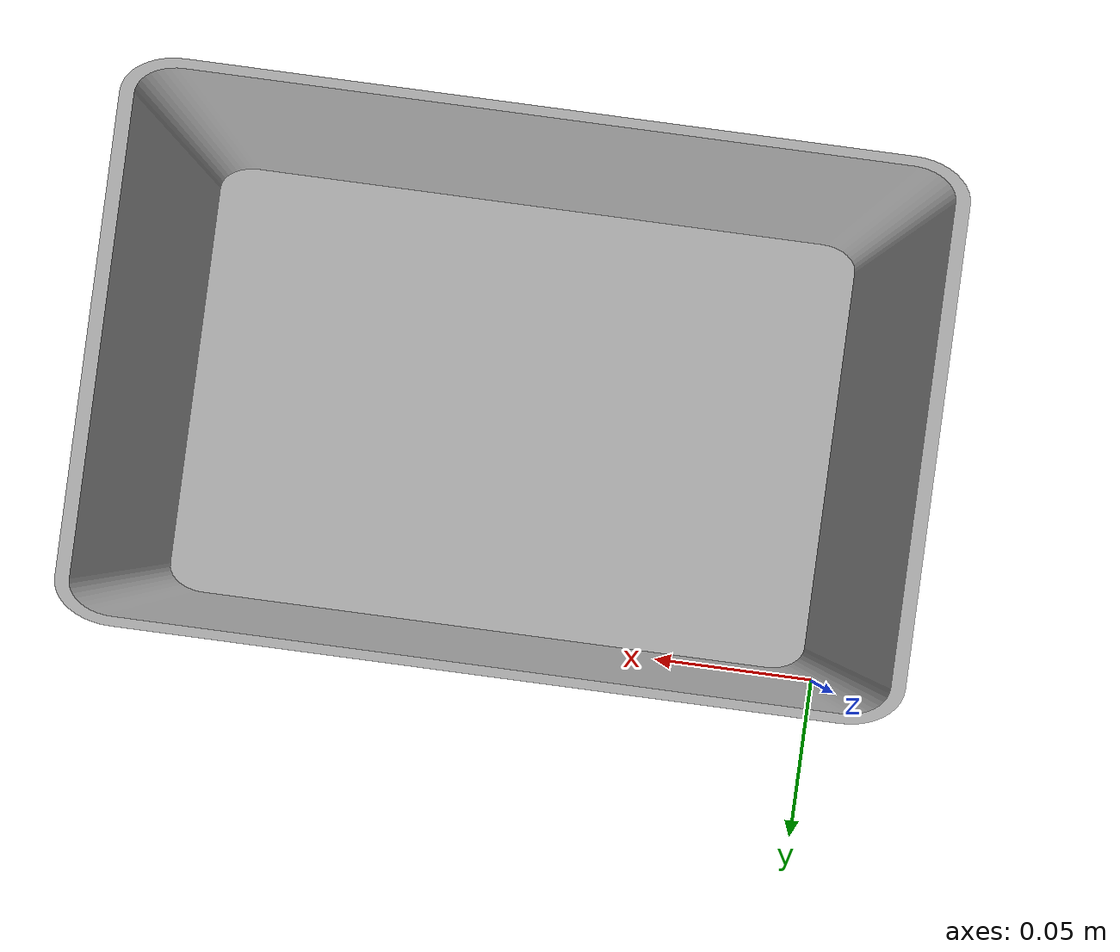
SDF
<?xml version='1.0'?>
<sdf version="1.4">
  <model name="basket">
    <pose>0 0 0 1.57 0 0</pose>
    <static>true</static>
    <link name="link">
      <inertial>
        <mass>1.0</mass>
        <inertia> <!-- inertias are tricky to compute -->
          <!-- http://gazebosim.org/tutorials?tut=inertia&cat=build_robot -->
          <ixx>0.083</ixx>       <!-- for a box: ixx = 0.083 * mass * (y*y + z*z) -->
          <ixy>0.0</ixy>         <!-- for a box: ixy = 0 -->
          <ixz>0.0</ixz>         <!-- for a box: ixz = 0 -->
          <iyy>0.083</iyy>       <!-- for a box: iyy = 0.083 * mass * (x*x + z*z) -->
          <iyz>0.0</iyz>         <!-- for a box: iyz = 0 -->
          <izz>0.083</izz>       <!-- for a box: izz = 0.083 * mass * (x*x + y*y) -->
        </inertia>
      </inertial>
      <collision name="collision">
        <geometry>
          <mesh>
            <uri>/home/sam/robotics_group_v/locosim/models/basket/basket.stl</uri>
            <scale> 0.003 0.002 0.002 </scale>
          </mesh>
        </geometry>
      </collision>
      <visual name="visual">
        <geometry>
          <mesh>
            <uri>/home/sam/robotics_group_v/locosim/models/basket/basket.stl</uri>
            <scale> 0.003 0.002 0.002 </scale>
          </mesh>
        </geometry>
      </visual>
    </link>
  </model>
</sdf>
